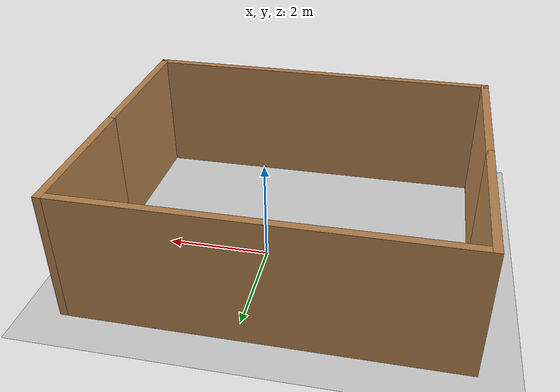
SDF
<sdf version="1.7">
 <world name="default">
  <light name="sun" type="directional">
   <pose>0 0 10 0 -0 0</pose>
   <diffuse>0.8 0.8 0.8 1</diffuse>
   <specular>0.2 0.2 0.2 1</specular>
   <attenuation>
    <range>1000</range>
    <constant>0.9</constant>
    <linear>0.01</linear>
    <quadratic>0.001</quadratic>
   </attenuation>
   <direction>-0.5 0.1 -0.9</direction>
   <spot><inner_angle>0</inner_angle><outer_angle>0</outer_angle><falloff>0</falloff></spot>
  </light>
  <model name="ground_plane">
   <static>1</static>
   <link name="link">
    <collision name="collision">
     <geometry><plane><normal>0 0 1</normal><size>100 100</size></plane></geometry>
     <surface><friction><ode><mu>100</mu><mu2>50</mu2></ode></friction></surface>
    </collision>
    <visual name="visual">
     <cast_shadows>0</cast_shadows>
     <geometry><plane><normal>0 0 1</normal><size>100 100</size></plane></geometry>
     <material>
      <script><uri>file://media/materials/scripts/gazebo.material</uri><name>Gazebo/Grey</name></script>
     </material>
    </visual>
   </link>
  </model>
  <gravity>0 0 -9.8</gravity>
  <magnetic_field>6e-06 2.3e-05 -4.2e-05</magnetic_field>
  <atmosphere type="adiabatic"/>
  <physics type="ode">
   <max_step_size>0.001</max_step_size>
   <real_time_factor>1</real_time_factor>
   <real_time_update_rate>1000</real_time_update_rate>
  </physics>
  <scene><ambient>0.4 0.4 0.4 1</ambient><background>0.7 0.7 0.7 1</background><shadows>1</shadows></scene>
  <audio><device>default</device></audio>
  <spherical_coordinates>
   <surface_model>EARTH_WGS84</surface_model>
   <latitude_deg>0</latitude_deg>
   <longitude_deg>0</longitude_deg>
   <elevation>0</elevation>
   <heading_deg>0</heading_deg>
  </spherical_coordinates>
  <model name="square_maze">
   <pose>-0.424966 -0.490425 0 0 -0 0</pose>
   <link name="Wall_13">
    <collision name="Wall_13_Collision">
     <geometry><box><size>3 0.15 2.5</size></box></geometry>
     <pose>0 0 1.25 0 -0 0</pose>
    </collision>
    <visual name="Wall_13_Visual">
     <pose>0 0 1.25 0 -0 0</pose>
     <geometry><box><size>3 0.15 2.5</size></box></geometry>
     <material>
      <script><uri>file://media/materials/scripts/gazebo.material</uri><name>Gazebo/Wood</name></script>
      <ambient>1 1 1 1</ambient>
     </material>
     <meta><layer>0</layer></meta>
    </visual>
    <pose>-3.55 1.425 0 0 -0 -1.5708</pose>
   </link>
   <link name="Wall_15">
    <collision name="Wall_15_Collision">
     <geometry><box><size>3 0.15 2.5</size></box></geometry>
     <pose>0 0 1.25 0 -0 0</pose>
    </collision>
    <visual name="Wall_15_Visual">
     <pose>0 0 1.25 0 -0 0</pose>
     <geometry><box><size>3 0.15 2.5</size></box></geometry>
     <material>
      <script><uri>file://media/materials/scripts/gazebo.material</uri><name>Gazebo/Wood</name></script>
      <ambient>1 1 1 1</ambient>
     </material>
     <meta><layer>0</layer></meta>
    </visual>
    <pose>3.55 1.425 0 0 -0 1.5708</pose>
   </link>
   <link name="Wall_16">
    <collision name="Wall_16_Collision">
     <geometry><box><size>7.25 0.15 2.5</size></box></geometry>
     <pose>0 0 1.25 0 -0 0</pose>
    </collision>
    <visual name="Wall_16_Visual">
     <pose>0 0 1.25 0 -0 0</pose>
     <geometry><box><size>7.25 0.15 2.5</size></box></geometry>
     <material>
      <script><uri>file://media/materials/scripts/gazebo.material</uri><name>Gazebo/Wood</name></script>
      <ambient>1 1 1 1</ambient>
     </material>
     <meta><layer>0</layer></meta>
    </visual>
    <pose>-0 2.85 0 0 -0 3.14159</pose>
   </link>
   <link name="Wall_18">
    <collision name="Wall_18_Collision">
     <geometry><box><size>3 0.15 2.5</size></box></geometry>
     <pose>0 0 1.25 0 -0 0</pose>
    </collision>
    <visual name="Wall_18_Visual">
     <pose>0 0 1.25 0 -0 0</pose>
     <geometry><box><size>3 0.15 2.5</size></box></geometry>
     <material>
      <script><uri>file://media/materials/scripts/gazebo.material</uri><name>Gazebo/Wood</name></script>
      <ambient>1 1 1 1</ambient>
     </material>
     <meta><layer>0</layer></meta>
    </visual>
    <pose>-3.55 -1.425 0 0 -0 -1.5708</pose>
   </link>
   <link name="Wall_20">
    <collision name="Wall_20_Collision">
     <geometry><box><size>7.25 0.15 2.5</size></box></geometry>
     <pose>0 0 1.25 0 -0 0</pose>
    </collision>
    <visual name="Wall_20_Visual">
     <pose>0 0 1.25 0 -0 0</pose>
     <geometry><box><size>7.25 0.15 2.5</size></box></geometry>
     <material>
      <script><uri>file://media/materials/scripts/gazebo.material</uri><name>Gazebo/Wood</name></script>
      <ambient>1 1 1 1</ambient>
     </material>
     <meta><layer>0</layer></meta>
    </visual>
    <pose>-0 -2.85 0 0 -0 0</pose>
   </link>
   <link name="Wall_22">
    <collision name="Wall_22_Collision">
     <geometry><box><size>3 0.15 2.5</size></box></geometry>
     <pose>0 0 1.25 0 -0 0</pose>
    </collision>
    <visual name="Wall_22_Visual">
     <pose>0 0 1.25 0 -0 0</pose>
     <geometry><box><size>3 0.15 2.5</size></box></geometry>
     <material>
      <script><uri>file://media/materials/scripts/gazebo.material</uri><name>Gazebo/Wood</name></script>
      <ambient>1 1 1 1</ambient>
     </material>
     <meta><layer>0</layer></meta>
    </visual>
    <pose>3.55 -1.425 0 0 -0 -1.5708</pose>
   </link>
   <static>1</static>
  </model>
 </world>
</sdf>
